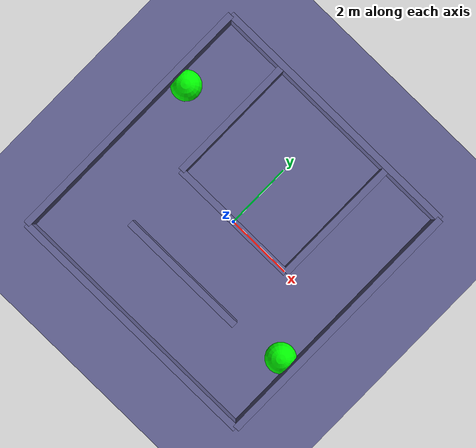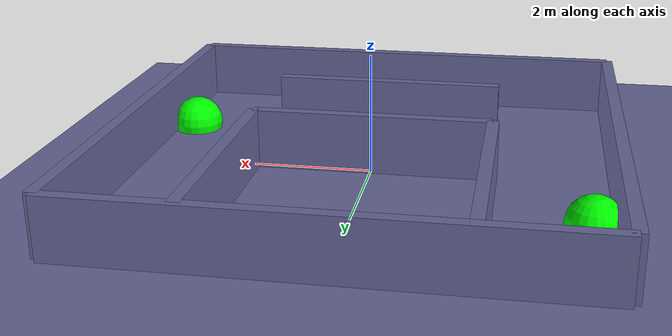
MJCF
<?xml version="1.0"?>
<mujoco model="image_maze_clean">
  <compiler angle="radian" coordinate="local"/>
  <option gravity="0 0 -9.81" timestep="0.01" integrator="RK4"/>

  <default>
    <geom contype="1" conaffinity="1" friction="1 0.1 0.1" rgba="0.4 0.4 0.6 1"/>
    <site size="0.25" rgba="0 1 0 1"/>
  </default>

  <asset>
    <texture type="skybox" builtin="gradient" rgb1="0.3 0.5 0.7" rgb2="0 0 0" width="512" height="512"/>
    <texture name="floor_tex" type="2d" builtin="checker" rgb1="0.2 0.2 0.2" rgb2="0.3 0.3 0.3" width="512" height="512"/>
    <material name="floor_mat" texture="floor_tex" texrepeat="6 6" reflectance="0.2"/>
    <material name="wall_mat"  rgba="0.55 0.6 0.75 1"/>
    <material name="entry_mat" rgba="1 0.6 0 1"/>
    <material name="exit_mat"  rgba="0 0.9 0.2 1"/>
  </asset>

  <worldbody>
    <!-- Floor -->
    <geom name="floor" type="plane" pos="0 0 -0.02" size="6 6 0.1" material="floor_mat"/>

    <!-- Entry and Exit points -->
    <site name="entry" pos="-3.6 1.8 0.1" size="0.45" material="entry_mat"/>
    <site name="exit"  pos="3.6 -1.8 0.1" size="0.45" material="exit_mat"/>

    <!-- Maze Walls (manual placement) -->
    <!-- Example outer walls -->
    <geom name="wall_left"   type="box" pos="-4 0 0.5" size="0.1 4 0.5" material="wall_mat"/>
    <geom name="wall_right"  type="box" pos="4 0 0.5"  size="0.1 4 0.5" material="wall_mat"/>
    <geom name="wall_top"    type="box" pos="0 4 0.5"  size="4 0.1 0.5" material="wall_mat"/>
    <geom name="wall_bottom" type="box" pos="0 -4 0.5" size="4 0.1 0.5" material="wall_mat"/>

    <!-- Example internal walls (you can copy and adjust positions) -->
    <geom name="wall_1" type="box" pos="-2 2 0.5" size="0.1 2 0.5" material="wall_mat"/>
    <geom name="wall_2" type="box" pos="2 2 0.5" size="0.1 2 0.5" material="wall_mat"/>
    <geom name="wall_3" type="box" pos="0 0 0.5" size="2 0.1 0.5" material="wall_mat"/>
    <geom name="wall_4" type="box" pos="0 -2 0.5" size="2 0.1 0.5" material="wall_mat"/>

    <!-- Light -->
    <light diffuse="0.85 0.85 0.85" pos="0 0 6" dir="0 0 -1"/>
  </worldbody>
</mujoco>
